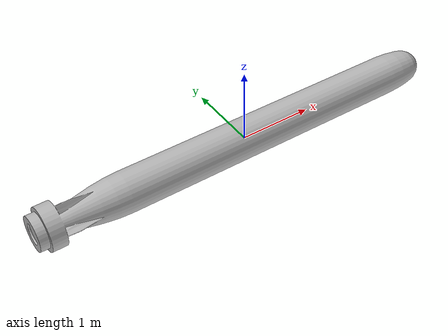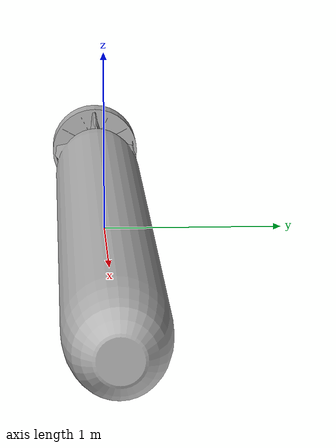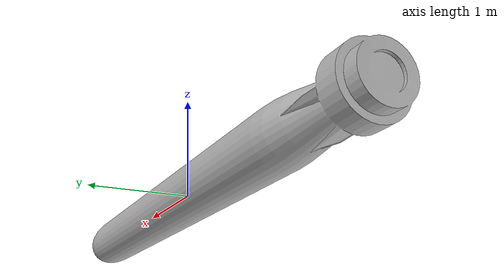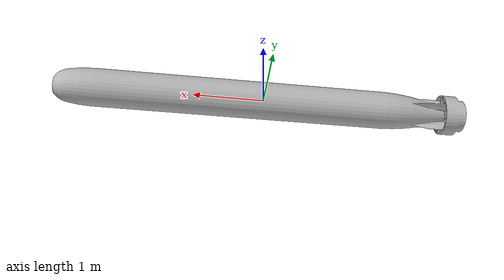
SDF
<?xml version="1.0"?>
<sdf version="1.6">
  <model name="torpedo_mk48">
    <static>false</static>
    <link name="base_link">
      <inertial>
        <!-- See python script in model folder for calcs -->
        <mass>278</mass>
        <inertia>
          <ixx>9.8</ixx>
          <ixy>0.0</ixy>
          <ixz>0.0</ixz>
          <iyy>785</iyy>
          <iyz>0.0</iyz>
          <izz>785</izz>
        </inertia>
      </inertial>
      <visual name="visual">
        <geometry>
           <mesh>
            <uri>file://torpedo_mk48/meshes/torpedo_mk48.dae</uri>
          </mesh>
        </geometry>
      </visual>
      <collision name="collision">
        <pose>0 0 0 0 0 0</pose>
        <geometry>
          <mesh>
            <uri>file://torpedo_mk48/meshes/torpedo_mk48_collision.dae</uri>
          </mesh>
        </geometry>
      </collision>
    </link>
  </model>
</sdf>
